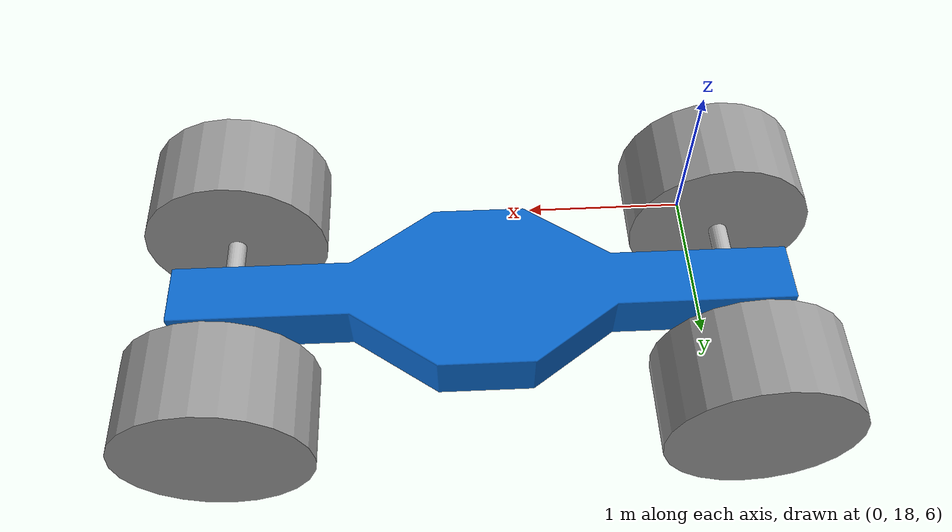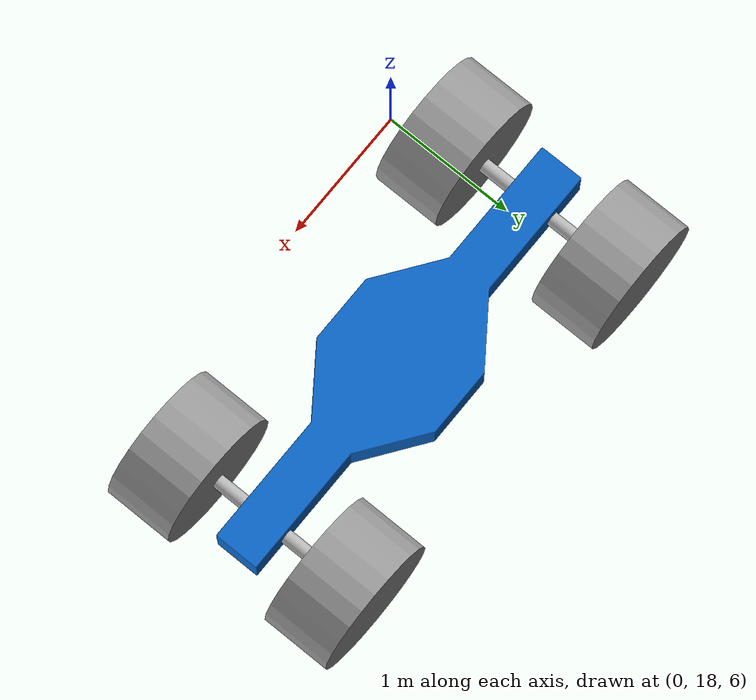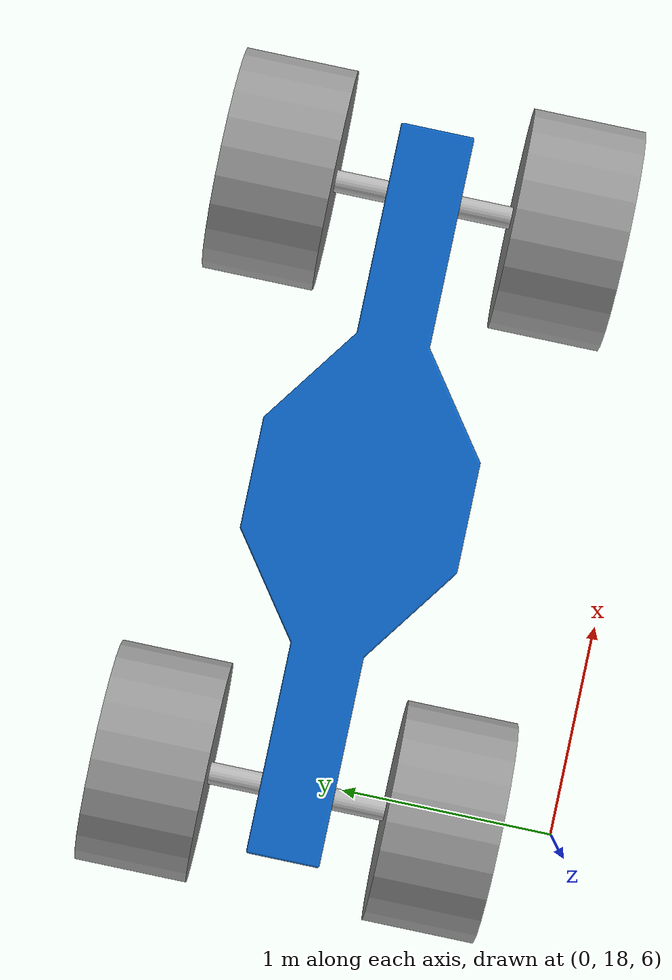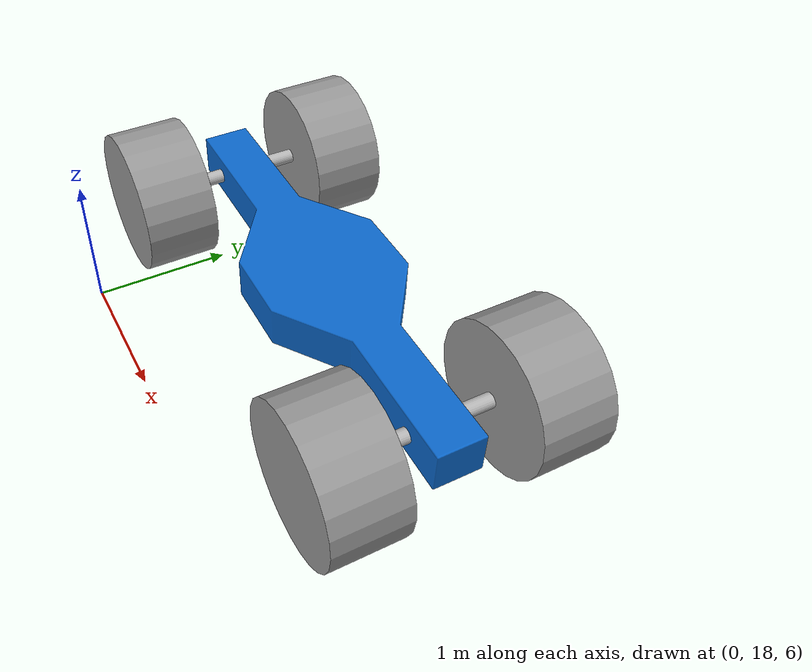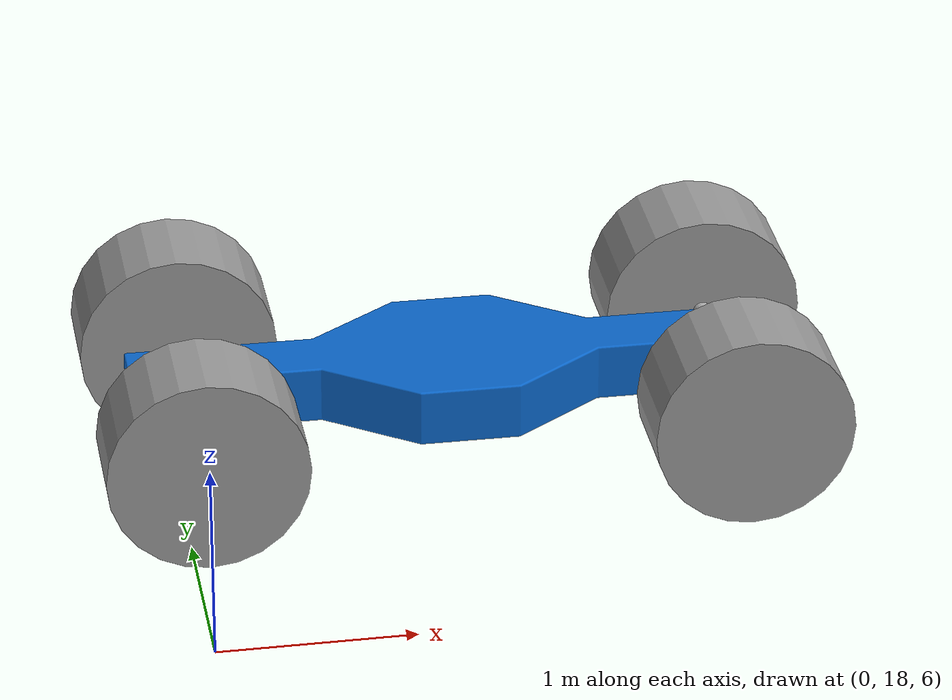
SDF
<sdf version="1.6">
 <world name="default">
  <scene><ambient>0.4 0.4 0.4 1</ambient><background>0.7 0.7 0.7 1</background><shadows>1</shadows></scene>
  <light name="sun" type="directional">
   <pose>0 0 10 0 -0 0</pose>
   <diffuse>0.8 0.8 0.8 1</diffuse>
   <specular>0.2 0.2 0.2 1</specular>
   <attenuation>
    <range>1000</range>
    <constant>0.9</constant>
    <linear>0.01</linear>
    <quadratic>0.001</quadratic>
   </attenuation>
   <direction>-0.5 0.1 -0.9</direction>
  </light>
  <physics name="default_physics" default="0" type="ode">
   <real_time_update_rate>1000</real_time_update_rate>
   <max_step_size>0.001</max_step_size>
   <real_time_factor>1</real_time_factor>
   <ode>
    <solver>
     <type>quick</type>
     <iters>150</iters>
     <precon_iters>0</precon_iters>
     <sor>1.4</sor>
     <use_dynamic_moi_rescaling>1</use_dynamic_moi_rescaling>
    </solver>
    <constraints>
     <cfm>1e-05</cfm>
     <erp>0.2</erp>
     <contact_max_correcting_vel>2000</contact_max_correcting_vel>
     <contact_surface_layer>0.01</contact_surface_layer>
    </constraints>
   </ode>
  </physics>
  <gravity>0 0 -9.8</gravity>
  <magnetic_field>6e-06 2.3e-05 -4.2e-05</magnetic_field>
  <atmosphere type="adiabatic"/>
  <audio><device>default</device></audio>
  <spherical_coordinates>
   <surface_model>EARTH_WGS84</surface_model>
   <latitude_deg>0</latitude_deg>
   <longitude_deg>0</longitude_deg>
   <elevation>0</elevation>
   <heading_deg>0</heading_deg>
  </spherical_coordinates>
  <model name="robot">
   <link name="base_link">
    <inertial>
     <mass>500</mass>
     <inertia><ixx>11.7917</ixx><ixy>0</ixy><ixz>0</ixz><iyy>376.292</iyy><iyz>0</iyz><izz>365.75</izz></inertia>
    </inertial>
    <collision name="base_link_collision"><geometry><sphere><radius>0.01</radius></sphere></geometry></collision>
    <collision name="base_link_fixed_joint_lump__baseframe_collision_1">
     <pose>0 0 0 1.5708 -0 0</pose>
     <geometry>
      <mesh><scale>1 1 1</scale><uri>/home/vm/catkin_ws/src/et_sim/meshes/baseframe.dae</uri></mesh>
     </geometry>
    </collision>
    <collision name="base_link_fixed_joint_lump__back_steeraxis_collision_2">
     <pose>-1.35 0 0 1.5708 -0 0</pose>
     <geometry><cylinder><length>0.8</length><radius>0.05</radius></cylinder></geometry>
    </collision>
    <collision name="base_link_fixed_joint_lump__front_steeraxis_collision_3">
     <pose>1.35 0 0 1.5708 -0 0</pose>
     <geometry><cylinder><length>0.8</length><radius>0.05</radius></cylinder></geometry>
    </collision>
    <visual name="base_link_visual"><geometry><sphere><radius>0.01</radius></sphere></geometry></visual>
    <visual name="base_link_fixed_joint_lump__baseframe_visual_1">
     <pose>0 0 0 1.5708 -0 0</pose>
     <geometry>
      <mesh><scale>1 1 1</scale><uri>/home/vm/catkin_ws/src/et_sim/meshes/baseframe.dae</uri></mesh>
     </geometry>
    </visual>
    <visual name="base_link_fixed_joint_lump__back_steeraxis_visual_2">
     <pose>-1.35 0 0 1.5708 -0 0</pose>
     <geometry><cylinder><length>0.8</length><radius>0.05</radius></cylinder></geometry>
    </visual>
    <visual name="base_link_fixed_joint_lump__front_steeraxis_visual_3">
     <pose>1.35 0 0 1.5708 -0 0</pose>
     <geometry><cylinder><length>0.8</length><radius>0.05</radius></cylinder></geometry>
    </visual>
   </link>
   <link name="back_left_wheel">
    <pose>-1.35 0.65 0 0 -0 0</pose>
    <inertial>
     <mass>100</mass>
     <inertia><ixx>8.33333</ixx><ixy>0</ixy><ixz>0</ixz><iyy>8.33333</iyy><iyz>0</iyz><izz>12.5</izz></inertia>
    </inertial>
    <collision name="back_left_wheel_collision">
     <pose>0 0 0 1.5708 -0 0</pose>
     <geometry><cylinder><length>0.5</length><radius>0.5</radius></cylinder></geometry>
     <surface>
      <contact><ode><kp>1e+09</kp><kd>0</kd></ode></contact>
      <friction><ode><mu>10</mu><mu2>10</mu2></ode></friction>
     </surface>
    </collision>
    <visual name="back_left_wheel_visual">
     <pose>0 0 0 1.5708 -0 0</pose>
     <geometry><cylinder><length>0.5</length><radius>0.5</radius></cylinder></geometry>
     <material>
      <script><name>Gazebo/Grey</name><uri>file://media/materials/scripts/gazebo.material</uri></script>
     </material>
    </visual>
   </link>
   <joint name="back_left_wheel_joint" type="revolute">
    <child>back_left_wheel</child>
    <parent>base_link</parent>
    <axis>
     <xyz>0 1 0</xyz>
     <limit><lower>-1e+16</lower><upper>1e+16</upper></limit>
     <dynamics><spring_reference>0</spring_reference><spring_stiffness>0</spring_stiffness></dynamics>
     <use_parent_model_frame>1</use_parent_model_frame>
    </axis>
   </joint>
   <link name="back_right_wheel">
    <pose>-1.35 -0.65 0 0 -0 0</pose>
    <inertial>
     <mass>100</mass>
     <inertia><ixx>8.33333</ixx><ixy>0</ixy><ixz>0</ixz><iyy>8.33333</iyy><iyz>0</iyz><izz>12.5</izz></inertia>
    </inertial>
    <collision name="back_right_wheel_collision">
     <pose>0 0 0 1.5708 -0 0</pose>
     <geometry><cylinder><length>0.5</length><radius>0.5</radius></cylinder></geometry>
     <surface>
      <contact><ode><kp>1e+09</kp><kd>0</kd></ode></contact>
      <friction><ode><mu>10</mu><mu2>10</mu2></ode></friction>
     </surface>
    </collision>
    <visual name="back_right_wheel_visual">
     <pose>0 0 0 1.5708 -0 0</pose>
     <geometry><cylinder><length>0.5</length><radius>0.5</radius></cylinder></geometry>
     <material>
      <script><name>Gazebo/Grey</name><uri>file://media/materials/scripts/gazebo.material</uri></script>
     </material>
    </visual>
   </link>
   <joint name="back_right_wheel_joint" type="revolute">
    <child>back_right_wheel</child>
    <parent>base_link</parent>
    <axis>
     <xyz>0 1 0</xyz>
     <limit><lower>-1e+16</lower><upper>1e+16</upper></limit>
     <dynamics><spring_reference>0</spring_reference><spring_stiffness>0</spring_stiffness></dynamics>
     <use_parent_model_frame>1</use_parent_model_frame>
    </axis>
   </joint>
   <link name="front_left_wheel">
    <pose>1.35 0.65 0 0 -0 0</pose>
    <inertial>
     <mass>100</mass>
     <inertia><ixx>8.33333</ixx><ixy>0</ixy><ixz>0</ixz><iyy>8.33333</iyy><iyz>0</iyz><izz>12.5</izz></inertia>
    </inertial>
    <collision name="front_left_wheel_collision">
     <pose>0 0 0 1.5708 -0 0</pose>
     <geometry><cylinder><length>0.5</length><radius>0.5</radius></cylinder></geometry>
     <surface>
      <contact><ode><kp>1e+09</kp><kd>0</kd></ode></contact>
      <friction><ode><mu>10</mu><mu2>10</mu2></ode></friction>
     </surface>
    </collision>
    <visual name="front_left_wheel_visual">
     <pose>0 0 0 1.5708 -0 0</pose>
     <geometry><cylinder><length>0.5</length><radius>0.5</radius></cylinder></geometry>
     <material>
      <script><name>Gazebo/Grey</name><uri>file://media/materials/scripts/gazebo.material</uri></script>
     </material>
    </visual>
   </link>
   <joint name="front_left_wheel_joint" type="revolute">
    <child>front_left_wheel</child>
    <parent>base_link</parent>
    <axis>
     <xyz>0 1 0</xyz>
     <limit><lower>-1e+16</lower><upper>1e+16</upper></limit>
     <dynamics><spring_reference>0</spring_reference><spring_stiffness>0</spring_stiffness></dynamics>
     <use_parent_model_frame>1</use_parent_model_frame>
    </axis>
   </joint>
   <link name="front_right_wheel">
    <pose>1.35 -0.65 0 0 -0 0</pose>
    <inertial>
     <mass>100</mass>
     <inertia><ixx>8.33333</ixx><ixy>0</ixy><ixz>0</ixz><iyy>8.33333</iyy><iyz>0</iyz><izz>12.5</izz></inertia>
    </inertial>
    <collision name="front_right_wheel_collision">
     <pose>0 0 0 1.5708 -0 0</pose>
     <geometry><cylinder><length>0.5</length><radius>0.5</radius></cylinder></geometry>
     <surface>
      <contact><ode><kp>1e+09</kp><kd>0</kd></ode></contact>
      <friction><ode><mu>10</mu><mu2>10</mu2></ode></friction>
     </surface>
    </collision>
    <visual name="front_right_wheel_visual">
     <pose>0 0 0 1.5708 -0 0</pose>
     <geometry><cylinder><length>0.5</length><radius>0.5</radius></cylinder></geometry>
     <material>
      <script><name>Gazebo/Grey</name><uri>file://media/materials/scripts/gazebo.material</uri></script>
     </material>
    </visual>
   </link>
   <joint name="front_right_wheel_joint" type="revolute">
    <child>front_right_wheel</child>
    <parent>base_link</parent>
    <axis>
     <xyz>0 1 0</xyz>
     <limit><lower>-1e+16</lower><upper>1e+16</upper></limit>
     <dynamics><spring_reference>0</spring_reference><spring_stiffness>0</spring_stiffness></dynamics>
     <use_parent_model_frame>1</use_parent_model_frame>
    </axis>
   </joint>
   <static>0</static>
   <plugin name="gazebo_ros_control" filename="libgazebo_ros_control.so">
    <robotNamespace>/</robotNamespace>
   </plugin>
   <pose>1.37732 19.2082 6.79279 -2e-06 -0 -3e-06</pose>
  </model>
 </world>
</sdf>
